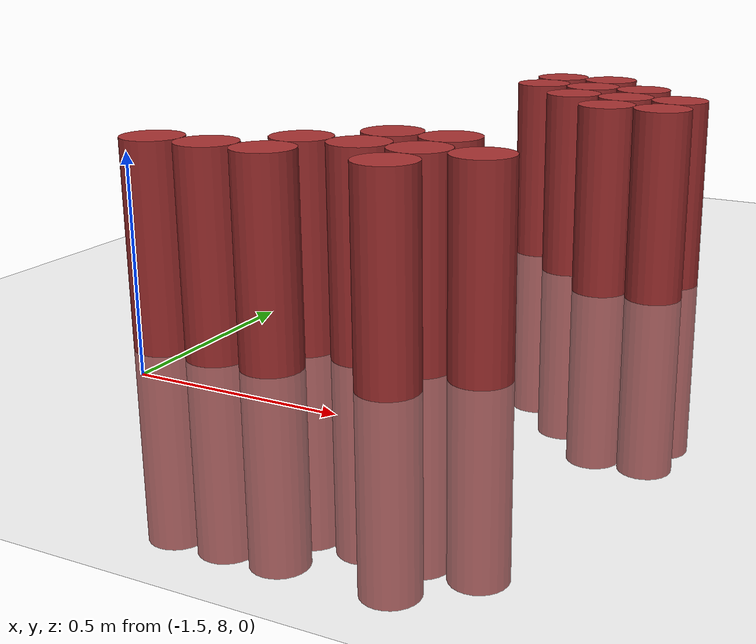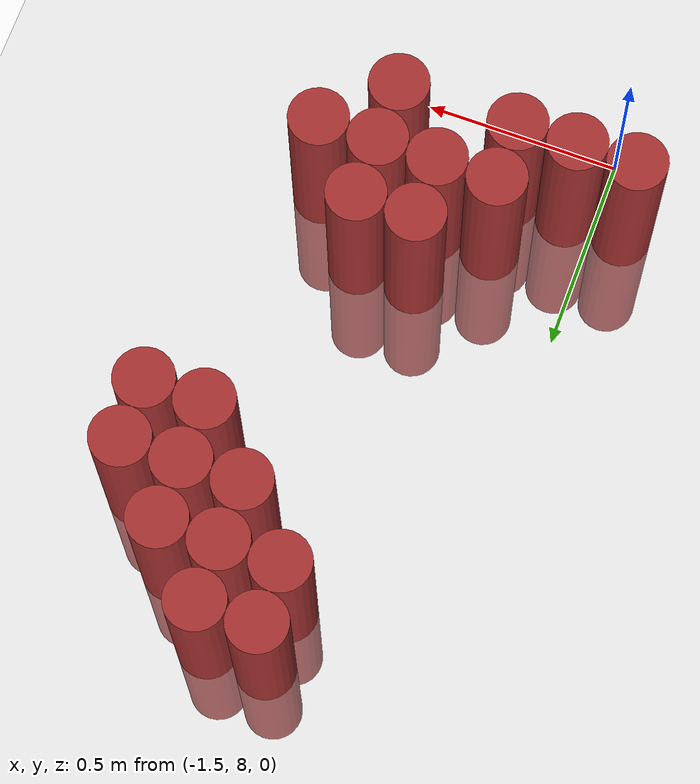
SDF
<sdf version="1.6">
 <world name="default">
  <model name="ground_plane">
   <static>1</static>
   <link name="link">
    <collision name="collision">
     <geometry><plane><normal>0 0 1</normal><size>100 100</size></plane></geometry>
     <surface><friction><ode><mu>100</mu><mu2>50</mu2></ode></friction></surface>
    </collision>
    <visual name="visual">
     <cast_shadows>0</cast_shadows>
     <geometry><plane><normal>0 0 1</normal><size>100 100</size></plane></geometry>
     <material>
      <script><uri>file://media/materials/scripts/gazebo.material</uri><name>Gazebo/Grey</name></script>
     </material>
    </visual>
   </link>
  </model>
  <model name="unit_cylinder_222">
   <static>1</static>
   <pose>-1.575000 8.175000 0.000000 0.000000 0.000000 0.000000</pose>
   <link name="link">
    <inertial>
     <mass>1</mass>
     <inertia><ixx>0.145833</ixx><ixy>0</ixy><ixz>0</ixz><iyy>0.145833</iyy><iyz>0</iyz><izz>0.125</izz></inertia>
    </inertial>
    <collision name="collision">
     <geometry><cylinder><radius>0.075000</radius><length>1</length></cylinder></geometry>
    </collision>
    <visual name="visual">
     <geometry><cylinder><radius>0.075000</radius><length>1</length></cylinder></geometry>
     <material>
      <ambient>0.648000 0.192000 0.192000 1</ambient>
      <diffuse>0.648000 0.192000 0.192000 1</diffuse>
     </material>
     <material>
      <script><name>Gazebo/Grey</name><uri>file://media/materials/scripts/gazebo.material</uri></script>
     </material>
    </visual>
    <sensor name="sensor_contact" type="contact"><contact><collision>collision</collision></contact></sensor>
   </link>
   <plugin filename="gz-sim-touchplugin-system" name="gz::sim::systems::TouchPlugin">
    <target>robot</target>
    <namespace>robot</namespace>
    <time>0.001</time>
    <enabled>true</enabled>
   </plugin>
  </model>
  <model name="unit_cylinder_227">
   <static>1</static>
   <pose>-1.425000 8.175000 0.000000 0.000000 0.000000 0.000000</pose>
   <link name="link">
    <inertial>
     <mass>1</mass>
     <inertia><ixx>0.145833</ixx><ixy>0</ixy><ixz>0</ixz><iyy>0.145833</iyy><iyz>0</iyz><izz>0.125</izz></inertia>
    </inertial>
    <collision name="collision">
     <geometry><cylinder><radius>0.075000</radius><length>1</length></cylinder></geometry>
    </collision>
    <visual name="visual">
     <geometry><cylinder><radius>0.075000</radius><length>1</length></cylinder></geometry>
     <material>
      <ambient>0.648000 0.192000 0.192000 1</ambient>
      <diffuse>0.648000 0.192000 0.192000 1</diffuse>
     </material>
     <material>
      <script><name>Gazebo/Grey</name><uri>file://media/materials/scripts/gazebo.material</uri></script>
     </material>
    </visual>
    <sensor name="sensor_contact" type="contact"><contact><collision>collision</collision></contact></sensor>
   </link>
   <plugin filename="gz-sim-touchplugin-system" name="gz::sim::systems::TouchPlugin">
    <target>robot</target>
    <namespace>robot</namespace>
    <time>0.001</time>
    <enabled>true</enabled>
   </plugin>
  </model>
  <model name="unit_cylinder_231">
   <static>1</static>
   <pose>-1.275000 8.175000 0.000000 0.000000 0.000000 0.000000</pose>
   <link name="link">
    <inertial>
     <mass>1</mass>
     <inertia><ixx>0.145833</ixx><ixy>0</ixy><ixz>0</ixz><iyy>0.145833</iyy><iyz>0</iyz><izz>0.125</izz></inertia>
    </inertial>
    <collision name="collision">
     <geometry><cylinder><radius>0.075000</radius><length>1</length></cylinder></geometry>
    </collision>
    <visual name="visual">
     <geometry><cylinder><radius>0.075000</radius><length>1</length></cylinder></geometry>
     <material>
      <ambient>0.648000 0.192000 0.192000 1</ambient>
      <diffuse>0.648000 0.192000 0.192000 1</diffuse>
     </material>
     <material>
      <script><name>Gazebo/Grey</name><uri>file://media/materials/scripts/gazebo.material</uri></script>
     </material>
    </visual>
    <sensor name="sensor_contact" type="contact"><contact><collision>collision</collision></contact></sensor>
   </link>
   <plugin filename="gz-sim-touchplugin-system" name="gz::sim::systems::TouchPlugin">
    <target>robot</target>
    <namespace>robot</namespace>
    <time>0.001</time>
    <enabled>true</enabled>
   </plugin>
  </model>
  <model name="unit_cylinder_232">
   <static>1</static>
   <pose>-1.275000 8.325000 0.000000 0.000000 0.000000 0.000000</pose>
   <link name="link">
    <inertial>
     <mass>1</mass>
     <inertia><ixx>0.145833</ixx><ixy>0</ixy><ixz>0</ixz><iyy>0.145833</iyy><iyz>0</iyz><izz>0.125</izz></inertia>
    </inertial>
    <collision name="collision">
     <geometry><cylinder><radius>0.075000</radius><length>1</length></cylinder></geometry>
    </collision>
    <visual name="visual">
     <geometry><cylinder><radius>0.075000</radius><length>1</length></cylinder></geometry>
     <material>
      <ambient>0.648000 0.192000 0.192000 1</ambient>
      <diffuse>0.648000 0.192000 0.192000 1</diffuse>
     </material>
     <material>
      <script><name>Gazebo/Grey</name><uri>file://media/materials/scripts/gazebo.material</uri></script>
     </material>
    </visual>
    <sensor name="sensor_contact" type="contact"><contact><collision>collision</collision></contact></sensor>
   </link>
   <plugin filename="gz-sim-touchplugin-system" name="gz::sim::systems::TouchPlugin">
    <target>robot</target>
    <namespace>robot</namespace>
    <time>0.001</time>
    <enabled>true</enabled>
   </plugin>
  </model>
  <model name="unit_cylinder_238">
   <static>1</static>
   <pose>-1.125000 8.325000 0.000000 0.000000 0.000000 0.000000</pose>
   <link name="link">
    <inertial>
     <mass>1</mass>
     <inertia><ixx>0.145833</ixx><ixy>0</ixy><ixz>0</ixz><iyy>0.145833</iyy><iyz>0</iyz><izz>0.125</izz></inertia>
    </inertial>
    <collision name="collision">
     <geometry><cylinder><radius>0.075000</radius><length>1</length></cylinder></geometry>
    </collision>
    <visual name="visual">
     <geometry><cylinder><radius>0.075000</radius><length>1</length></cylinder></geometry>
     <material>
      <ambient>0.648000 0.192000 0.192000 1</ambient>
      <diffuse>0.648000 0.192000 0.192000 1</diffuse>
     </material>
     <material>
      <script><name>Gazebo/Grey</name><uri>file://media/materials/scripts/gazebo.material</uri></script>
     </material>
    </visual>
    <sensor name="sensor_contact" type="contact"><contact><collision>collision</collision></contact></sensor>
   </link>
   <plugin filename="gz-sim-touchplugin-system" name="gz::sim::systems::TouchPlugin">
    <target>robot</target>
    <namespace>robot</namespace>
    <time>0.001</time>
    <enabled>true</enabled>
   </plugin>
  </model>
  <model name="unit_cylinder_239">
   <static>1</static>
   <pose>-1.125000 8.475000 0.000000 0.000000 0.000000 0.000000</pose>
   <link name="link">
    <inertial>
     <mass>1</mass>
     <inertia><ixx>0.145833</ixx><ixy>0</ixy><ixz>0</ixz><iyy>0.145833</iyy><iyz>0</iyz><izz>0.125</izz></inertia>
    </inertial>
    <collision name="collision">
     <geometry><cylinder><radius>0.075000</radius><length>1</length></cylinder></geometry>
    </collision>
    <visual name="visual">
     <geometry><cylinder><radius>0.075000</radius><length>1</length></cylinder></geometry>
     <material>
      <ambient>0.648000 0.192000 0.192000 1</ambient>
      <diffuse>0.648000 0.192000 0.192000 1</diffuse>
     </material>
     <material>
      <script><name>Gazebo/Grey</name><uri>file://media/materials/scripts/gazebo.material</uri></script>
     </material>
    </visual>
    <sensor name="sensor_contact" type="contact"><contact><collision>collision</collision></contact></sensor>
   </link>
   <plugin filename="gz-sim-touchplugin-system" name="gz::sim::systems::TouchPlugin">
    <target>robot</target>
    <namespace>robot</namespace>
    <time>0.001</time>
    <enabled>true</enabled>
   </plugin>
  </model>
  <model name="unit_cylinder_240">
   <static>1</static>
   <pose>-1.125000 9.375000 0.000000 0.000000 0.000000 0.000000</pose>
   <link name="link">
    <inertial>
     <mass>1</mass>
     <inertia><ixx>0.145833</ixx><ixy>0</ixy><ixz>0</ixz><iyy>0.145833</iyy><iyz>0</iyz><izz>0.125</izz></inertia>
    </inertial>
    <collision name="collision">
     <geometry><cylinder><radius>0.075000</radius><length>1</length></cylinder></geometry>
    </collision>
    <visual name="visual">
     <geometry><cylinder><radius>0.075000</radius><length>1</length></cylinder></geometry>
     <material>
      <ambient>0.648000 0.192000 0.192000 1</ambient>
      <diffuse>0.648000 0.192000 0.192000 1</diffuse>
     </material>
     <material>
      <script><name>Gazebo/Grey</name><uri>file://media/materials/scripts/gazebo.material</uri></script>
     </material>
    </visual>
    <sensor name="sensor_contact" type="contact"><contact><collision>collision</collision></contact></sensor>
   </link>
   <plugin filename="gz-sim-touchplugin-system" name="gz::sim::systems::TouchPlugin">
    <target>robot</target>
    <namespace>robot</namespace>
    <time>0.001</time>
    <enabled>true</enabled>
   </plugin>
  </model>
  <model name="unit_cylinder_241">
   <static>1</static>
   <pose>-1.125000 9.525000 0.000000 0.000000 0.000000 0.000000</pose>
   <link name="link">
    <inertial>
     <mass>1</mass>
     <inertia><ixx>0.145833</ixx><ixy>0</ixy><ixz>0</ixz><iyy>0.145833</iyy><iyz>0</iyz><izz>0.125</izz></inertia>
    </inertial>
    <collision name="collision">
     <geometry><cylinder><radius>0.075000</radius><length>1</length></cylinder></geometry>
    </collision>
    <visual name="visual">
     <geometry><cylinder><radius>0.075000</radius><length>1</length></cylinder></geometry>
     <material>
      <ambient>0.648000 0.192000 0.192000 1</ambient>
      <diffuse>0.648000 0.192000 0.192000 1</diffuse>
     </material>
     <material>
      <script><name>Gazebo/Grey</name><uri>file://media/materials/scripts/gazebo.material</uri></script>
     </material>
    </visual>
    <sensor name="sensor_contact" type="contact"><contact><collision>collision</collision></contact></sensor>
   </link>
   <plugin filename="gz-sim-touchplugin-system" name="gz::sim::systems::TouchPlugin">
    <target>robot</target>
    <namespace>robot</namespace>
    <time>0.001</time>
    <enabled>true</enabled>
   </plugin>
  </model>
  <model name="unit_cylinder_247">
   <static>1</static>
   <pose>-0.975000 8.175000 0.000000 0.000000 0.000000 0.000000</pose>
   <link name="link">
    <inertial>
     <mass>1</mass>
     <inertia><ixx>0.145833</ixx><ixy>0</ixy><ixz>0</ixz><iyy>0.145833</iyy><iyz>0</iyz><izz>0.125</izz></inertia>
    </inertial>
    <collision name="collision">
     <geometry><cylinder><radius>0.075000</radius><length>1</length></cylinder></geometry>
    </collision>
    <visual name="visual">
     <geometry><cylinder><radius>0.075000</radius><length>1</length></cylinder></geometry>
     <material>
      <ambient>0.648000 0.192000 0.192000 1</ambient>
      <diffuse>0.648000 0.192000 0.192000 1</diffuse>
     </material>
     <material>
      <script><name>Gazebo/Grey</name><uri>file://media/materials/scripts/gazebo.material</uri></script>
     </material>
    </visual>
    <sensor name="sensor_contact" type="contact"><contact><collision>collision</collision></contact></sensor>
   </link>
   <plugin filename="gz-sim-touchplugin-system" name="gz::sim::systems::TouchPlugin">
    <target>robot</target>
    <namespace>robot</namespace>
    <time>0.001</time>
    <enabled>true</enabled>
   </plugin>
  </model>
  <model name="unit_cylinder_248">
   <static>1</static>
   <pose>-0.975000 8.325000 0.000000 0.000000 0.000000 0.000000</pose>
   <link name="link">
    <inertial>
     <mass>1</mass>
     <inertia><ixx>0.145833</ixx><ixy>0</ixy><ixz>0</ixz><iyy>0.145833</iyy><iyz>0</iyz><izz>0.125</izz></inertia>
    </inertial>
    <collision name="collision">
     <geometry><cylinder><radius>0.075000</radius><length>1</length></cylinder></geometry>
    </collision>
    <visual name="visual">
     <geometry><cylinder><radius>0.075000</radius><length>1</length></cylinder></geometry>
     <material>
      <ambient>0.648000 0.192000 0.192000 1</ambient>
      <diffuse>0.648000 0.192000 0.192000 1</diffuse>
     </material>
     <material>
      <script><name>Gazebo/Grey</name><uri>file://media/materials/scripts/gazebo.material</uri></script>
     </material>
    </visual>
    <sensor name="sensor_contact" type="contact"><contact><collision>collision</collision></contact></sensor>
   </link>
   <plugin filename="gz-sim-touchplugin-system" name="gz::sim::systems::TouchPlugin">
    <target>robot</target>
    <namespace>robot</namespace>
    <time>0.001</time>
    <enabled>true</enabled>
   </plugin>
  </model>
  <model name="unit_cylinder_249">
   <static>1</static>
   <pose>-0.975000 8.475000 0.000000 0.000000 0.000000 0.000000</pose>
   <link name="link">
    <inertial>
     <mass>1</mass>
     <inertia><ixx>0.145833</ixx><ixy>0</ixy><ixz>0</ixz><iyy>0.145833</iyy><iyz>0</iyz><izz>0.125</izz></inertia>
    </inertial>
    <collision name="collision">
     <geometry><cylinder><radius>0.075000</radius><length>1</length></cylinder></geometry>
    </collision>
    <visual name="visual">
     <geometry><cylinder><radius>0.075000</radius><length>1</length></cylinder></geometry>
     <material>
      <ambient>0.648000 0.192000 0.192000 1</ambient>
      <diffuse>0.648000 0.192000 0.192000 1</diffuse>
     </material>
     <material>
      <script><name>Gazebo/Grey</name><uri>file://media/materials/scripts/gazebo.material</uri></script>
     </material>
    </visual>
    <sensor name="sensor_contact" type="contact"><contact><collision>collision</collision></contact></sensor>
   </link>
   <plugin filename="gz-sim-touchplugin-system" name="gz::sim::systems::TouchPlugin">
    <target>robot</target>
    <namespace>robot</namespace>
    <time>0.001</time>
    <enabled>true</enabled>
   </plugin>
  </model>
  <model name="unit_cylinder_250">
   <static>1</static>
   <pose>-0.975000 9.225000 0.000000 0.000000 0.000000 0.000000</pose>
   <link name="link">
    <inertial>
     <mass>1</mass>
     <inertia><ixx>0.145833</ixx><ixy>0</ixy><ixz>0</ixz><iyy>0.145833</iyy><iyz>0</iyz><izz>0.125</izz></inertia>
    </inertial>
    <collision name="collision">
     <geometry><cylinder><radius>0.075000</radius><length>1</length></cylinder></geometry>
    </collision>
    <visual name="visual">
     <geometry><cylinder><radius>0.075000</radius><length>1</length></cylinder></geometry>
     <material>
      <ambient>0.648000 0.192000 0.192000 1</ambient>
      <diffuse>0.648000 0.192000 0.192000 1</diffuse>
     </material>
     <material>
      <script><name>Gazebo/Grey</name><uri>file://media/materials/scripts/gazebo.material</uri></script>
     </material>
    </visual>
    <sensor name="sensor_contact" type="contact"><contact><collision>collision</collision></contact></sensor>
   </link>
   <plugin filename="gz-sim-touchplugin-system" name="gz::sim::systems::TouchPlugin">
    <target>robot</target>
    <namespace>robot</namespace>
    <time>0.001</time>
    <enabled>true</enabled>
   </plugin>
  </model>
  <model name="unit_cylinder_251">
   <static>1</static>
   <pose>-0.975000 9.375000 0.000000 0.000000 0.000000 0.000000</pose>
   <link name="link">
    <inertial>
     <mass>1</mass>
     <inertia><ixx>0.145833</ixx><ixy>0</ixy><ixz>0</ixz><iyy>0.145833</iyy><iyz>0</iyz><izz>0.125</izz></inertia>
    </inertial>
    <collision name="collision">
     <geometry><cylinder><radius>0.075000</radius><length>1</length></cylinder></geometry>
    </collision>
    <visual name="visual">
     <geometry><cylinder><radius>0.075000</radius><length>1</length></cylinder></geometry>
     <material>
      <ambient>0.648000 0.192000 0.192000 1</ambient>
      <diffuse>0.648000 0.192000 0.192000 1</diffuse>
     </material>
     <material>
      <script><name>Gazebo/Grey</name><uri>file://media/materials/scripts/gazebo.material</uri></script>
     </material>
    </visual>
    <sensor name="sensor_contact" type="contact"><contact><collision>collision</collision></contact></sensor>
   </link>
   <plugin filename="gz-sim-touchplugin-system" name="gz::sim::systems::TouchPlugin">
    <target>robot</target>
    <namespace>robot</namespace>
    <time>0.001</time>
    <enabled>true</enabled>
   </plugin>
  </model>
  <model name="unit_cylinder_252">
   <static>1</static>
   <pose>-0.975000 9.525000 0.000000 0.000000 0.000000 0.000000</pose>
   <link name="link">
    <inertial>
     <mass>1</mass>
     <inertia><ixx>0.145833</ixx><ixy>0</ixy><ixz>0</ixz><iyy>0.145833</iyy><iyz>0</iyz><izz>0.125</izz></inertia>
    </inertial>
    <collision name="collision">
     <geometry><cylinder><radius>0.075000</radius><length>1</length></cylinder></geometry>
    </collision>
    <visual name="visual">
     <geometry><cylinder><radius>0.075000</radius><length>1</length></cylinder></geometry>
     <material>
      <ambient>0.648000 0.192000 0.192000 1</ambient>
      <diffuse>0.648000 0.192000 0.192000 1</diffuse>
     </material>
     <material>
      <script><name>Gazebo/Grey</name><uri>file://media/materials/scripts/gazebo.material</uri></script>
     </material>
    </visual>
    <sensor name="sensor_contact" type="contact"><contact><collision>collision</collision></contact></sensor>
   </link>
   <plugin filename="gz-sim-touchplugin-system" name="gz::sim::systems::TouchPlugin">
    <target>robot</target>
    <namespace>robot</namespace>
    <time>0.001</time>
    <enabled>true</enabled>
   </plugin>
  </model>
  <model name="unit_cylinder_256">
   <static>1</static>
   <pose>-0.825000 8.325000 0.000000 0.000000 0.000000 0.000000</pose>
   <link name="link">
    <inertial>
     <mass>1</mass>
     <inertia><ixx>0.145833</ixx><ixy>0</ixy><ixz>0</ixz><iyy>0.145833</iyy><iyz>0</iyz><izz>0.125</izz></inertia>
    </inertial>
    <collision name="collision">
     <geometry><cylinder><radius>0.075000</radius><length>1</length></cylinder></geometry>
    </collision>
    <visual name="visual">
     <geometry><cylinder><radius>0.075000</radius><length>1</length></cylinder></geometry>
     <material>
      <ambient>0.648000 0.192000 0.192000 1</ambient>
      <diffuse>0.648000 0.192000 0.192000 1</diffuse>
     </material>
     <material>
      <script><name>Gazebo/Grey</name><uri>file://media/materials/scripts/gazebo.material</uri></script>
     </material>
    </visual>
    <sensor name="sensor_contact" type="contact"><contact><collision>collision</collision></contact></sensor>
   </link>
   <plugin filename="gz-sim-touchplugin-system" name="gz::sim::systems::TouchPlugin">
    <target>robot</target>
    <namespace>robot</namespace>
    <time>0.001</time>
    <enabled>true</enabled>
   </plugin>
  </model>
  <model name="unit_cylinder_257">
   <static>1</static>
   <pose>-0.825000 9.075000 0.000000 0.000000 0.000000 0.000000</pose>
   <link name="link">
    <inertial>
     <mass>1</mass>
     <inertia><ixx>0.145833</ixx><ixy>0</ixy><ixz>0</ixz><iyy>0.145833</iyy><iyz>0</iyz><izz>0.125</izz></inertia>
    </inertial>
    <collision name="collision">
     <geometry><cylinder><radius>0.075000</radius><length>1</length></cylinder></geometry>
    </collision>
    <visual name="visual">
     <geometry><cylinder><radius>0.075000</radius><length>1</length></cylinder></geometry>
     <material>
      <ambient>0.648000 0.192000 0.192000 1</ambient>
      <diffuse>0.648000 0.192000 0.192000 1</diffuse>
     </material>
     <material>
      <script><name>Gazebo/Grey</name><uri>file://media/materials/scripts/gazebo.material</uri></script>
     </material>
    </visual>
    <sensor name="sensor_contact" type="contact"><contact><collision>collision</collision></contact></sensor>
   </link>
   <plugin filename="gz-sim-touchplugin-system" name="gz::sim::systems::TouchPlugin">
    <target>robot</target>
    <namespace>robot</namespace>
    <time>0.001</time>
    <enabled>true</enabled>
   </plugin>
  </model>
  <model name="unit_cylinder_258">
   <static>1</static>
   <pose>-0.825000 9.225000 0.000000 0.000000 0.000000 0.000000</pose>
   <link name="link">
    <inertial>
     <mass>1</mass>
     <inertia><ixx>0.145833</ixx><ixy>0</ixy><ixz>0</ixz><iyy>0.145833</iyy><iyz>0</iyz><izz>0.125</izz></inertia>
    </inertial>
    <collision name="collision">
     <geometry><cylinder><radius>0.075000</radius><length>1</length></cylinder></geometry>
    </collision>
    <visual name="visual">
     <geometry><cylinder><radius>0.075000</radius><length>1</length></cylinder></geometry>
     <material>
      <ambient>0.648000 0.192000 0.192000 1</ambient>
      <diffuse>0.648000 0.192000 0.192000 1</diffuse>
     </material>
     <material>
      <script><name>Gazebo/Grey</name><uri>file://media/materials/scripts/gazebo.material</uri></script>
     </material>
    </visual>
    <sensor name="sensor_contact" type="contact"><contact><collision>collision</collision></contact></sensor>
   </link>
   <plugin filename="gz-sim-touchplugin-system" name="gz::sim::systems::TouchPlugin">
    <target>robot</target>
    <namespace>robot</namespace>
    <time>0.001</time>
    <enabled>true</enabled>
   </plugin>
  </model>
  <model name="unit_cylinder_259">
   <static>1</static>
   <pose>-0.825000 9.375000 0.000000 0.000000 0.000000 0.000000</pose>
   <link name="link">
    <inertial>
     <mass>1</mass>
     <inertia><ixx>0.145833</ixx><ixy>0</ixy><ixz>0</ixz><iyy>0.145833</iyy><iyz>0</iyz><izz>0.125</izz></inertia>
    </inertial>
    <collision name="collision">
     <geometry><cylinder><radius>0.075000</radius><length>1</length></cylinder></geometry>
    </collision>
    <visual name="visual">
     <geometry><cylinder><radius>0.075000</radius><length>1</length></cylinder></geometry>
     <material>
      <ambient>0.648000 0.192000 0.192000 1</ambient>
      <diffuse>0.648000 0.192000 0.192000 1</diffuse>
     </material>
     <material>
      <script><name>Gazebo/Grey</name><uri>file://media/materials/scripts/gazebo.material</uri></script>
     </material>
    </visual>
    <sensor name="sensor_contact" type="contact"><contact><collision>collision</collision></contact></sensor>
   </link>
   <plugin filename="gz-sim-touchplugin-system" name="gz::sim::systems::TouchPlugin">
    <target>robot</target>
    <namespace>robot</namespace>
    <time>0.001</time>
    <enabled>true</enabled>
   </plugin>
  </model>
  <model name="unit_cylinder_263">
   <static>1</static>
   <pose>-0.675000 9.075000 0.000000 0.000000 0.000000 0.000000</pose>
   <link name="link">
    <inertial>
     <mass>1</mass>
     <inertia><ixx>0.145833</ixx><ixy>0</ixy><ixz>0</ixz><iyy>0.145833</iyy><iyz>0</iyz><izz>0.125</izz></inertia>
    </inertial>
    <collision name="collision">
     <geometry><cylinder><radius>0.075000</radius><length>1</length></cylinder></geometry>
    </collision>
    <visual name="visual">
     <geometry><cylinder><radius>0.075000</radius><length>1</length></cylinder></geometry>
     <material>
      <ambient>0.648000 0.192000 0.192000 1</ambient>
      <diffuse>0.648000 0.192000 0.192000 1</diffuse>
     </material>
     <material>
      <script><name>Gazebo/Grey</name><uri>file://media/materials/scripts/gazebo.material</uri></script>
     </material>
    </visual>
    <sensor name="sensor_contact" type="contact"><contact><collision>collision</collision></contact></sensor>
   </link>
   <plugin filename="gz-sim-touchplugin-system" name="gz::sim::systems::TouchPlugin">
    <target>robot</target>
    <namespace>robot</namespace>
    <time>0.001</time>
    <enabled>true</enabled>
   </plugin>
  </model>
  <model name="unit_cylinder_264">
   <static>1</static>
   <pose>-0.675000 9.225000 0.000000 0.000000 0.000000 0.000000</pose>
   <link name="link">
    <inertial>
     <mass>1</mass>
     <inertia><ixx>0.145833</ixx><ixy>0</ixy><ixz>0</ixz><iyy>0.145833</iyy><iyz>0</iyz><izz>0.125</izz></inertia>
    </inertial>
    <collision name="collision">
     <geometry><cylinder><radius>0.075000</radius><length>1</length></cylinder></geometry>
    </collision>
    <visual name="visual">
     <geometry><cylinder><radius>0.075000</radius><length>1</length></cylinder></geometry>
     <material>
      <ambient>0.648000 0.192000 0.192000 1</ambient>
      <diffuse>0.648000 0.192000 0.192000 1</diffuse>
     </material>
     <material>
      <script><name>Gazebo/Grey</name><uri>file://media/materials/scripts/gazebo.material</uri></script>
     </material>
    </visual>
    <sensor name="sensor_contact" type="contact"><contact><collision>collision</collision></contact></sensor>
   </link>
   <plugin filename="gz-sim-touchplugin-system" name="gz::sim::systems::TouchPlugin">
    <target>robot</target>
    <namespace>robot</namespace>
    <time>0.001</time>
    <enabled>true</enabled>
   </plugin>
  </model>
 </world>
</sdf>
